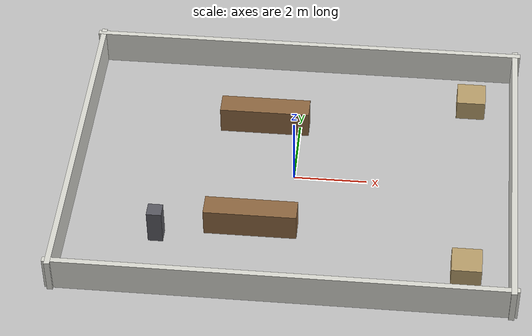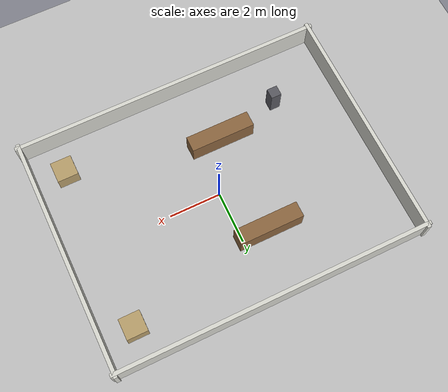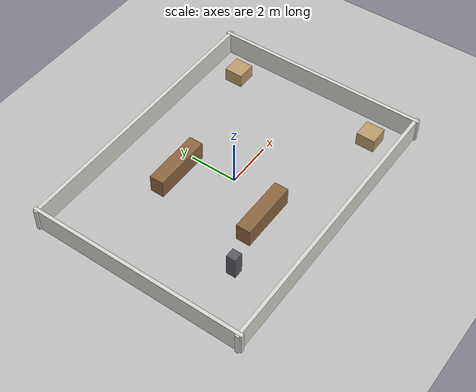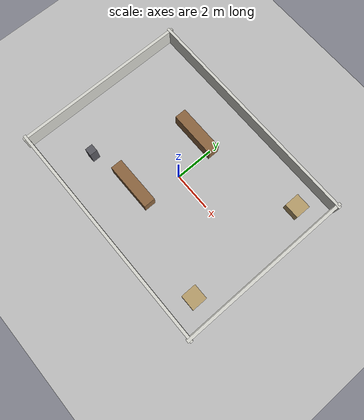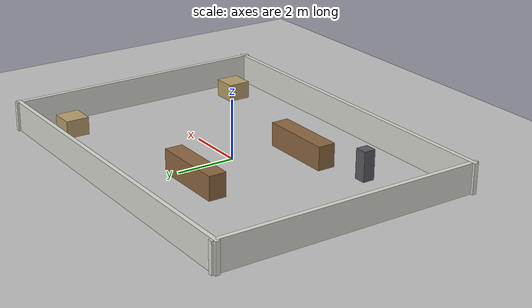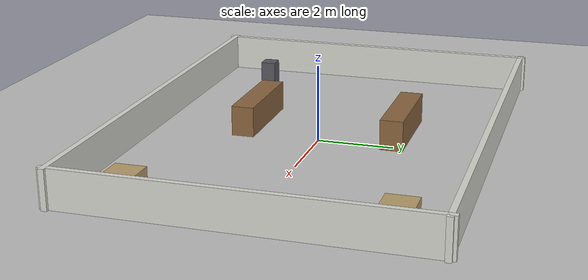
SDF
<?xml version="1.0" ?>
<sdf version="1.8">
  <world name="warehouse">

    <physics name="4ms" type="ignored">
      <max_step_size>0.004</max_step_size>
      <real_time_factor>1.0</real_time_factor>
    </physics>

    <plugin filename="libignition-gazebo-physics-system.so"
            name="ignition::gazebo::systems::Physics"/>
    <plugin filename="libignition-gazebo-user-commands-system.so"
            name="ignition::gazebo::systems::UserCommands"/>
    <plugin filename="libignition-gazebo-scene-broadcaster-system.so"
            name="ignition::gazebo::systems::SceneBroadcaster"/>
    <plugin filename="libignition-gazebo-sensors-system.so"
            name="ignition::gazebo::systems::Sensors">
      <render_engine>ogre2</render_engine>
    </plugin>
    <plugin filename="libignition-gazebo-imu-system.so"
            name="ignition::gazebo::systems::Imu"/>

    <scene>
      <ambient>0.8 0.8 0.8 1</ambient>
      <background>0.4 0.4 0.45 1</background>
      <shadows>false</shadows>
      <grid>false</grid>
    </scene>

    <light type="directional" name="sun">
      <cast_shadows>false</cast_shadows>
      <pose>0 0 10 0 0 0</pose>
      <diffuse>0.85 0.85 0.85 1</diffuse>
      <specular>0.0 0.0 0.0 1</specular>
      <direction>0 0 -1</direction>
    </light>

    <model name="ground_plane">
      <static>true</static>
      <link name="link">
        <collision name="collision">
          <geometry><plane><normal>0 0 1</normal><size>30 30</size></plane></geometry>
        </collision>
        <visual name="visual">
          <geometry><plane><normal>0 0 1</normal><size>30 30</size></plane></geometry>
          <material>
            <ambient>0.75 0.75 0.75 1</ambient>
            <diffuse>0.75 0.75 0.75 1</diffuse>
          </material>
        </visual>
      </link>
    </model>

    <!-- =================== Outer walls (interior 12 x 9) =================== -->
    <model name="wall_north">
      <static>true</static>
      <pose>0 4.5 0.5 0 0 0</pose>
      <link name="link">
        <collision name="collision">
          <geometry><box><size>12.3 0.15 1.0</size></box></geometry>
        </collision>
        <visual name="visual">
          <geometry><box><size>12.3 0.15 1.0</size></box></geometry>
          <material><ambient>0.85 0.85 0.82 1</ambient><diffuse>0.85 0.85 0.82 1</diffuse></material>
        </visual>
      </link>
    </model>

    <model name="wall_south">
      <static>true</static>
      <pose>0 -4.5 0.5 0 0 0</pose>
      <link name="link">
        <collision name="collision">
          <geometry><box><size>12.3 0.15 1.0</size></box></geometry>
        </collision>
        <visual name="visual">
          <geometry><box><size>12.3 0.15 1.0</size></box></geometry>
          <material><ambient>0.85 0.85 0.82 1</ambient><diffuse>0.85 0.85 0.82 1</diffuse></material>
        </visual>
      </link>
    </model>

    <model name="wall_east">
      <static>true</static>
      <pose>6 0 0.5 0 0 0</pose>
      <link name="link">
        <collision name="collision">
          <geometry><box><size>0.15 9.3 1.0</size></box></geometry>
        </collision>
        <visual name="visual">
          <geometry><box><size>0.15 9.3 1.0</size></box></geometry>
          <material><ambient>0.85 0.85 0.82 1</ambient><diffuse>0.85 0.85 0.82 1</diffuse></material>
        </visual>
      </link>
    </model>

    <model name="wall_west">
      <static>true</static>
      <pose>-6 0 0.5 0 0 0</pose>
      <link name="link">
        <collision name="collision">
          <geometry><box><size>0.15 9.3 1.0</size></box></geometry>
        </collision>
        <visual name="visual">
          <geometry><box><size>0.15 9.3 1.0</size></box></geometry>
          <material><ambient>0.85 0.85 0.82 1</ambient><diffuse>0.85 0.85 0.82 1</diffuse></material>
        </visual>
      </link>
    </model>

    <!-- =================== Shelves (SLAM features + corridors) =================== -->
    <model name="shelf_a">
      <static>true</static>
      <pose>-1.0 2.0 0.4 0 0 0</pose>
      <link name="link">
        <collision name="collision">
          <geometry><box><size>2.5 0.6 0.8</size></box></geometry>
        </collision>
        <visual name="visual">
          <geometry><box><size>2.5 0.6 0.8</size></box></geometry>
          <material><ambient>0.55 0.40 0.25 1</ambient><diffuse>0.55 0.40 0.25 1</diffuse></material>
        </visual>
      </link>
    </model>

    <model name="shelf_b">
      <static>true</static>
      <pose>-1.0 -2.0 0.4 0 0 0</pose>
      <link name="link">
        <collision name="collision">
          <geometry><box><size>2.5 0.6 0.8</size></box></geometry>
        </collision>
        <visual name="visual">
          <geometry><box><size>2.5 0.6 0.8</size></box></geometry>
          <material><ambient>0.55 0.40 0.25 1</ambient><diffuse>0.55 0.40 0.25 1</diffuse></material>
        </visual>
      </link>
    </model>

    <!-- =================== Loose stock boxes =================== -->
    <model name="box_1">
      <static>true</static>
      <pose>4.8 3.2 0.3 0 0 0</pose>
      <link name="link">
        <collision name="collision">
          <geometry><box><size>0.8 0.8 0.6</size></box></geometry>
        </collision>
        <visual name="visual">
          <geometry><box><size>0.8 0.8 0.6</size></box></geometry>
          <material><ambient>0.72 0.62 0.42 1</ambient><diffuse>0.72 0.62 0.42 1</diffuse></material>
        </visual>
      </link>
    </model>

    <model name="box_2">
      <static>true</static>
      <pose>4.8 -3.2 0.3 0 0 0</pose>
      <link name="link">
        <collision name="collision">
          <geometry><box><size>0.8 0.8 0.6</size></box></geometry>
        </collision>
        <visual name="visual">
          <geometry><box><size>0.8 0.8 0.6</size></box></geometry>
          <material><ambient>0.72 0.62 0.42 1</ambient><diffuse>0.72 0.62 0.42 1</diffuse></material>
        </visual>
      </link>
    </model>

    <!-- =================== Structural pillar =================== -->
    <model name="pillar">
      <static>true</static>
      <pose>-3.5 -2.5 0.5 0 0 0</pose>
      <link name="link">
        <collision name="collision">
          <geometry><box><size>0.4 0.4 1.0</size></box></geometry>
        </collision>
        <visual name="visual">
          <geometry><box><size>0.4 0.4 1.0</size></box></geometry>
          <material><ambient>0.35 0.35 0.38 1</ambient><diffuse>0.35 0.35 0.38 1</diffuse></material>
        </visual>
      </link>
    </model>

  </world>
</sdf>
